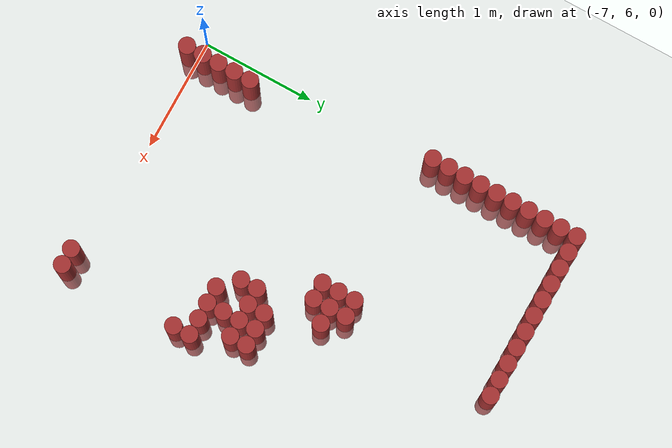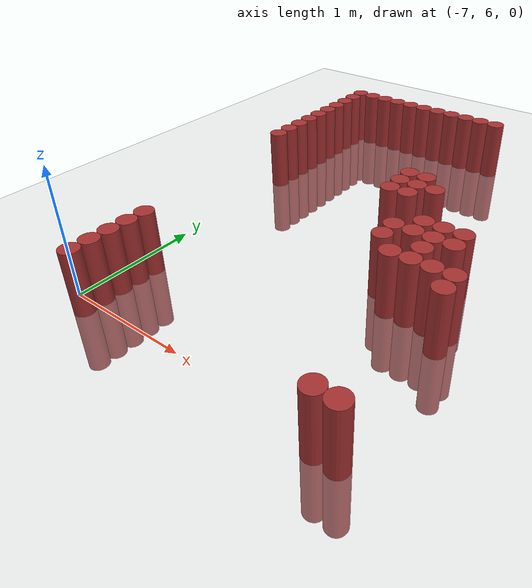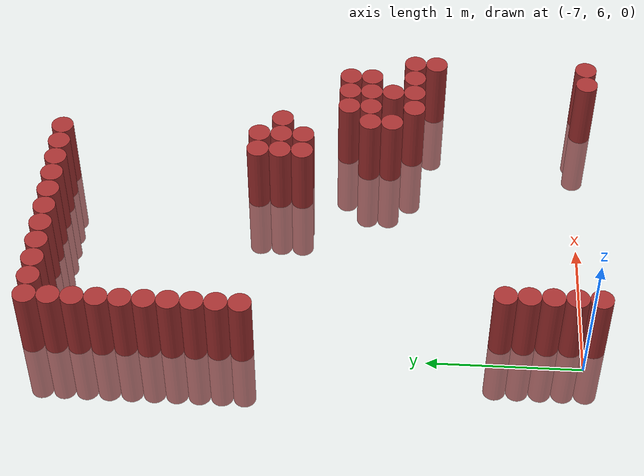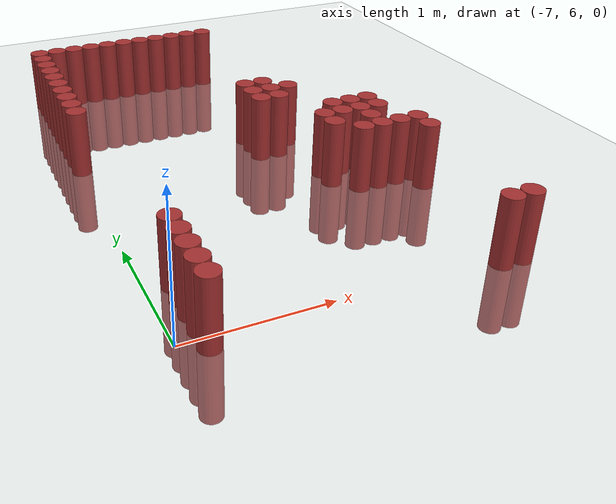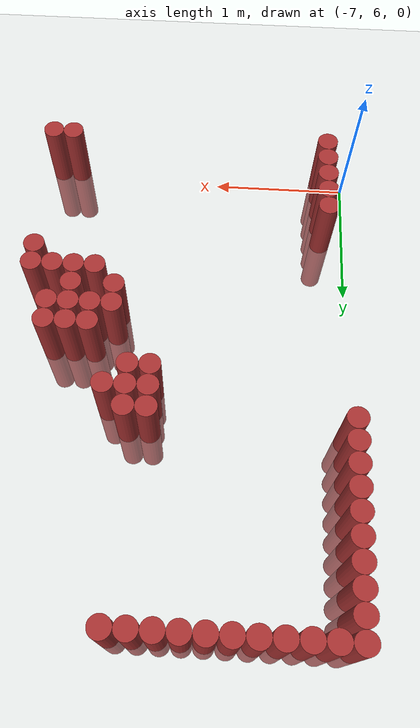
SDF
<sdf version="1.6">
 <world name="default">
  <model name="ground_plane">
   <static>1</static>
   <link name="link">
    <collision name="collision">
     <geometry><plane><normal>0 0 1</normal><size>100 100</size></plane></geometry>
     <surface><friction><ode><mu>100</mu><mu2>50</mu2></ode></friction></surface>
    </collision>
    <visual name="visual">
     <cast_shadows>0</cast_shadows>
     <geometry><plane><normal>0 0 1</normal><size>100 100</size></plane></geometry>
     <material>
      <script><uri>file://media/materials/scripts/gazebo.material</uri><name>Gazebo/Grey</name></script>
     </material>
    </visual>
   </link>
  </model>
  <model name="unit_cylinder_191">
   <static>1</static>
   <pose>-6.975000 8.175000 0.000000 0.000000 0.000000 0.000000</pose>
   <link name="link">
    <inertial>
     <mass>1</mass>
     <inertia><ixx>0.145833</ixx><ixy>0</ixy><ixz>0</ixz><iyy>0.145833</iyy><iyz>0</iyz><izz>0.125</izz></inertia>
    </inertial>
    <collision name="collision">
     <geometry><cylinder><radius>0.075000</radius><length>1</length></cylinder></geometry>
    </collision>
    <visual name="visual">
     <geometry><cylinder><radius>0.075000</radius><length>1</length></cylinder></geometry>
     <material>
      <ambient>0.648000 0.192000 0.192000 1</ambient>
      <diffuse>0.648000 0.192000 0.192000 1</diffuse>
     </material>
     <material>
      <script><name>Gazebo/Grey</name><uri>file://media/materials/scripts/gazebo.material</uri></script>
     </material>
    </visual>
   </link>
  </model>
  <model name="unit_cylinder_192">
   <static>1</static>
   <pose>-6.975000 8.325000 0.000000 0.000000 0.000000 0.000000</pose>
   <link name="link">
    <inertial>
     <mass>1</mass>
     <inertia><ixx>0.145833</ixx><ixy>0</ixy><ixz>0</ixz><iyy>0.145833</iyy><iyz>0</iyz><izz>0.125</izz></inertia>
    </inertial>
    <collision name="collision">
     <geometry><cylinder><radius>0.075000</radius><length>1</length></cylinder></geometry>
    </collision>
    <visual name="visual">
     <geometry><cylinder><radius>0.075000</radius><length>1</length></cylinder></geometry>
     <material>
      <ambient>0.648000 0.192000 0.192000 1</ambient>
      <diffuse>0.648000 0.192000 0.192000 1</diffuse>
     </material>
     <material>
      <script><name>Gazebo/Grey</name><uri>file://media/materials/scripts/gazebo.material</uri></script>
     </material>
    </visual>
   </link>
  </model>
  <model name="unit_cylinder_193">
   <static>1</static>
   <pose>-6.975000 8.475000 0.000000 0.000000 0.000000 0.000000</pose>
   <link name="link">
    <inertial>
     <mass>1</mass>
     <inertia><ixx>0.145833</ixx><ixy>0</ixy><ixz>0</ixz><iyy>0.145833</iyy><iyz>0</iyz><izz>0.125</izz></inertia>
    </inertial>
    <collision name="collision">
     <geometry><cylinder><radius>0.075000</radius><length>1</length></cylinder></geometry>
    </collision>
    <visual name="visual">
     <geometry><cylinder><radius>0.075000</radius><length>1</length></cylinder></geometry>
     <material>
      <ambient>0.648000 0.192000 0.192000 1</ambient>
      <diffuse>0.648000 0.192000 0.192000 1</diffuse>
     </material>
     <material>
      <script><name>Gazebo/Grey</name><uri>file://media/materials/scripts/gazebo.material</uri></script>
     </material>
    </visual>
   </link>
  </model>
  <model name="unit_cylinder_194">
   <static>1</static>
   <pose>-6.975000 8.625000 0.000000 0.000000 0.000000 0.000000</pose>
   <link name="link">
    <inertial>
     <mass>1</mass>
     <inertia><ixx>0.145833</ixx><ixy>0</ixy><ixz>0</ixz><iyy>0.145833</iyy><iyz>0</iyz><izz>0.125</izz></inertia>
    </inertial>
    <collision name="collision">
     <geometry><cylinder><radius>0.075000</radius><length>1</length></cylinder></geometry>
    </collision>
    <visual name="visual">
     <geometry><cylinder><radius>0.075000</radius><length>1</length></cylinder></geometry>
     <material>
      <ambient>0.648000 0.192000 0.192000 1</ambient>
      <diffuse>0.648000 0.192000 0.192000 1</diffuse>
     </material>
     <material>
      <script><name>Gazebo/Grey</name><uri>file://media/materials/scripts/gazebo.material</uri></script>
     </material>
    </visual>
   </link>
  </model>
  <model name="unit_cylinder_195">
   <static>1</static>
   <pose>-6.975000 8.775000 0.000000 0.000000 0.000000 0.000000</pose>
   <link name="link">
    <inertial>
     <mass>1</mass>
     <inertia><ixx>0.145833</ixx><ixy>0</ixy><ixz>0</ixz><iyy>0.145833</iyy><iyz>0</iyz><izz>0.125</izz></inertia>
    </inertial>
    <collision name="collision">
     <geometry><cylinder><radius>0.075000</radius><length>1</length></cylinder></geometry>
    </collision>
    <visual name="visual">
     <geometry><cylinder><radius>0.075000</radius><length>1</length></cylinder></geometry>
     <material>
      <ambient>0.648000 0.192000 0.192000 1</ambient>
      <diffuse>0.648000 0.192000 0.192000 1</diffuse>
     </material>
     <material>
      <script><name>Gazebo/Grey</name><uri>file://media/materials/scripts/gazebo.material</uri></script>
     </material>
    </visual>
   </link>
  </model>
  <model name="unit_cylinder_196">
   <static>1</static>
   <pose>-6.975000 8.925000 0.000000 0.000000 0.000000 0.000000</pose>
   <link name="link">
    <inertial>
     <mass>1</mass>
     <inertia><ixx>0.145833</ixx><ixy>0</ixy><ixz>0</ixz><iyy>0.145833</iyy><iyz>0</iyz><izz>0.125</izz></inertia>
    </inertial>
    <collision name="collision">
     <geometry><cylinder><radius>0.075000</radius><length>1</length></cylinder></geometry>
    </collision>
    <visual name="visual">
     <geometry><cylinder><radius>0.075000</radius><length>1</length></cylinder></geometry>
     <material>
      <ambient>0.648000 0.192000 0.192000 1</ambient>
      <diffuse>0.648000 0.192000 0.192000 1</diffuse>
     </material>
     <material>
      <script><name>Gazebo/Grey</name><uri>file://media/materials/scripts/gazebo.material</uri></script>
     </material>
    </visual>
   </link>
  </model>
  <model name="unit_cylinder_197">
   <static>1</static>
   <pose>-6.975000 9.075000 0.000000 0.000000 0.000000 0.000000</pose>
   <link name="link">
    <inertial>
     <mass>1</mass>
     <inertia><ixx>0.145833</ixx><ixy>0</ixy><ixz>0</ixz><iyy>0.145833</iyy><iyz>0</iyz><izz>0.125</izz></inertia>
    </inertial>
    <collision name="collision">
     <geometry><cylinder><radius>0.075000</radius><length>1</length></cylinder></geometry>
    </collision>
    <visual name="visual">
     <geometry><cylinder><radius>0.075000</radius><length>1</length></cylinder></geometry>
     <material>
      <ambient>0.648000 0.192000 0.192000 1</ambient>
      <diffuse>0.648000 0.192000 0.192000 1</diffuse>
     </material>
     <material>
      <script><name>Gazebo/Grey</name><uri>file://media/materials/scripts/gazebo.material</uri></script>
     </material>
    </visual>
   </link>
  </model>
  <model name="unit_cylinder_198">
   <static>1</static>
   <pose>-6.975000 9.225000 0.000000 0.000000 0.000000 0.000000</pose>
   <link name="link">
    <inertial>
     <mass>1</mass>
     <inertia><ixx>0.145833</ixx><ixy>0</ixy><ixz>0</ixz><iyy>0.145833</iyy><iyz>0</iyz><izz>0.125</izz></inertia>
    </inertial>
    <collision name="collision">
     <geometry><cylinder><radius>0.075000</radius><length>1</length></cylinder></geometry>
    </collision>
    <visual name="visual">
     <geometry><cylinder><radius>0.075000</radius><length>1</length></cylinder></geometry>
     <material>
      <ambient>0.648000 0.192000 0.192000 1</ambient>
      <diffuse>0.648000 0.192000 0.192000 1</diffuse>
     </material>
     <material>
      <script><name>Gazebo/Grey</name><uri>file://media/materials/scripts/gazebo.material</uri></script>
     </material>
    </visual>
   </link>
  </model>
  <model name="unit_cylinder_199">
   <static>1</static>
   <pose>-6.975000 9.375000 0.000000 0.000000 0.000000 0.000000</pose>
   <link name="link">
    <inertial>
     <mass>1</mass>
     <inertia><ixx>0.145833</ixx><ixy>0</ixy><ixz>0</ixz><iyy>0.145833</iyy><iyz>0</iyz><izz>0.125</izz></inertia>
    </inertial>
    <collision name="collision">
     <geometry><cylinder><radius>0.075000</radius><length>1</length></cylinder></geometry>
    </collision>
    <visual name="visual">
     <geometry><cylinder><radius>0.075000</radius><length>1</length></cylinder></geometry>
     <material>
      <ambient>0.648000 0.192000 0.192000 1</ambient>
      <diffuse>0.648000 0.192000 0.192000 1</diffuse>
     </material>
     <material>
      <script><name>Gazebo/Grey</name><uri>file://media/materials/scripts/gazebo.material</uri></script>
     </material>
    </visual>
   </link>
  </model>
  <model name="unit_cylinder_200">
   <static>1</static>
   <pose>-6.975000 9.525000 0.000000 0.000000 0.000000 0.000000</pose>
   <link name="link">
    <inertial>
     <mass>1</mass>
     <inertia><ixx>0.145833</ixx><ixy>0</ixy><ixz>0</ixz><iyy>0.145833</iyy><iyz>0</iyz><izz>0.125</izz></inertia>
    </inertial>
    <collision name="collision">
     <geometry><cylinder><radius>0.075000</radius><length>1</length></cylinder></geometry>
    </collision>
    <visual name="visual">
     <geometry><cylinder><radius>0.075000</radius><length>1</length></cylinder></geometry>
     <material>
      <ambient>0.648000 0.192000 0.192000 1</ambient>
      <diffuse>0.648000 0.192000 0.192000 1</diffuse>
     </material>
     <material>
      <script><name>Gazebo/Grey</name><uri>file://media/materials/scripts/gazebo.material</uri></script>
     </material>
    </visual>
   </link>
  </model>
  <model name="unit_cylinder_206">
   <static>1</static>
   <pose>-6.825000 5.925000 0.000000 0.000000 0.000000 0.000000</pose>
   <link name="link">
    <inertial>
     <mass>1</mass>
     <inertia><ixx>0.145833</ixx><ixy>0</ixy><ixz>0</ixz><iyy>0.145833</iyy><iyz>0</iyz><izz>0.125</izz></inertia>
    </inertial>
    <collision name="collision">
     <geometry><cylinder><radius>0.075000</radius><length>1</length></cylinder></geometry>
    </collision>
    <visual name="visual">
     <geometry><cylinder><radius>0.075000</radius><length>1</length></cylinder></geometry>
     <material>
      <ambient>0.648000 0.192000 0.192000 1</ambient>
      <diffuse>0.648000 0.192000 0.192000 1</diffuse>
     </material>
     <material>
      <script><name>Gazebo/Grey</name><uri>file://media/materials/scripts/gazebo.material</uri></script>
     </material>
    </visual>
   </link>
  </model>
  <model name="unit_cylinder_207">
   <static>1</static>
   <pose>-6.825000 6.075000 0.000000 0.000000 0.000000 0.000000</pose>
   <link name="link">
    <inertial>
     <mass>1</mass>
     <inertia><ixx>0.145833</ixx><ixy>0</ixy><ixz>0</ixz><iyy>0.145833</iyy><iyz>0</iyz><izz>0.125</izz></inertia>
    </inertial>
    <collision name="collision">
     <geometry><cylinder><radius>0.075000</radius><length>1</length></cylinder></geometry>
    </collision>
    <visual name="visual">
     <geometry><cylinder><radius>0.075000</radius><length>1</length></cylinder></geometry>
     <material>
      <ambient>0.648000 0.192000 0.192000 1</ambient>
      <diffuse>0.648000 0.192000 0.192000 1</diffuse>
     </material>
     <material>
      <script><name>Gazebo/Grey</name><uri>file://media/materials/scripts/gazebo.material</uri></script>
     </material>
    </visual>
   </link>
  </model>
  <model name="unit_cylinder_208">
   <static>1</static>
   <pose>-6.825000 6.225000 0.000000 0.000000 0.000000 0.000000</pose>
   <link name="link">
    <inertial>
     <mass>1</mass>
     <inertia><ixx>0.145833</ixx><ixy>0</ixy><ixz>0</ixz><iyy>0.145833</iyy><iyz>0</iyz><izz>0.125</izz></inertia>
    </inertial>
    <collision name="collision">
     <geometry><cylinder><radius>0.075000</radius><length>1</length></cylinder></geometry>
    </collision>
    <visual name="visual">
     <geometry><cylinder><radius>0.075000</radius><length>1</length></cylinder></geometry>
     <material>
      <ambient>0.648000 0.192000 0.192000 1</ambient>
      <diffuse>0.648000 0.192000 0.192000 1</diffuse>
     </material>
     <material>
      <script><name>Gazebo/Grey</name><uri>file://media/materials/scripts/gazebo.material</uri></script>
     </material>
    </visual>
   </link>
  </model>
  <model name="unit_cylinder_209">
   <static>1</static>
   <pose>-6.825000 6.375000 0.000000 0.000000 0.000000 0.000000</pose>
   <link name="link">
    <inertial>
     <mass>1</mass>
     <inertia><ixx>0.145833</ixx><ixy>0</ixy><ixz>0</ixz><iyy>0.145833</iyy><iyz>0</iyz><izz>0.125</izz></inertia>
    </inertial>
    <collision name="collision">
     <geometry><cylinder><radius>0.075000</radius><length>1</length></cylinder></geometry>
    </collision>
    <visual name="visual">
     <geometry><cylinder><radius>0.075000</radius><length>1</length></cylinder></geometry>
     <material>
      <ambient>0.648000 0.192000 0.192000 1</ambient>
      <diffuse>0.648000 0.192000 0.192000 1</diffuse>
     </material>
     <material>
      <script><name>Gazebo/Grey</name><uri>file://media/materials/scripts/gazebo.material</uri></script>
     </material>
    </visual>
   </link>
  </model>
  <model name="unit_cylinder_210">
   <static>1</static>
   <pose>-6.825000 6.525000 0.000000 0.000000 0.000000 0.000000</pose>
   <link name="link">
    <inertial>
     <mass>1</mass>
     <inertia><ixx>0.145833</ixx><ixy>0</ixy><ixz>0</ixz><iyy>0.145833</iyy><iyz>0</iyz><izz>0.125</izz></inertia>
    </inertial>
    <collision name="collision">
     <geometry><cylinder><radius>0.075000</radius><length>1</length></cylinder></geometry>
    </collision>
    <visual name="visual">
     <geometry><cylinder><radius>0.075000</radius><length>1</length></cylinder></geometry>
     <material>
      <ambient>0.648000 0.192000 0.192000 1</ambient>
      <diffuse>0.648000 0.192000 0.192000 1</diffuse>
     </material>
     <material>
      <script><name>Gazebo/Grey</name><uri>file://media/materials/scripts/gazebo.material</uri></script>
     </material>
    </visual>
   </link>
  </model>
  <model name="unit_cylinder_211">
   <static>1</static>
   <pose>-6.825000 9.525000 0.000000 0.000000 0.000000 0.000000</pose>
   <link name="link">
    <inertial>
     <mass>1</mass>
     <inertia><ixx>0.145833</ixx><ixy>0</ixy><ixz>0</ixz><iyy>0.145833</iyy><iyz>0</iyz><izz>0.125</izz></inertia>
    </inertial>
    <collision name="collision">
     <geometry><cylinder><radius>0.075000</radius><length>1</length></cylinder></geometry>
    </collision>
    <visual name="visual">
     <geometry><cylinder><radius>0.075000</radius><length>1</length></cylinder></geometry>
     <material>
      <ambient>0.648000 0.192000 0.192000 1</ambient>
      <diffuse>0.648000 0.192000 0.192000 1</diffuse>
     </material>
     <material>
      <script><name>Gazebo/Grey</name><uri>file://media/materials/scripts/gazebo.material</uri></script>
     </material>
    </visual>
   </link>
  </model>
  <model name="unit_cylinder_212">
   <static>1</static>
   <pose>-6.675000 9.525000 0.000000 0.000000 0.000000 0.000000</pose>
   <link name="link">
    <inertial>
     <mass>1</mass>
     <inertia><ixx>0.145833</ixx><ixy>0</ixy><ixz>0</ixz><iyy>0.145833</iyy><iyz>0</iyz><izz>0.125</izz></inertia>
    </inertial>
    <collision name="collision">
     <geometry><cylinder><radius>0.075000</radius><length>1</length></cylinder></geometry>
    </collision>
    <visual name="visual">
     <geometry><cylinder><radius>0.075000</radius><length>1</length></cylinder></geometry>
     <material>
      <ambient>0.648000 0.192000 0.192000 1</ambient>
      <diffuse>0.648000 0.192000 0.192000 1</diffuse>
     </material>
     <material>
      <script><name>Gazebo/Grey</name><uri>file://media/materials/scripts/gazebo.material</uri></script>
     </material>
    </visual>
   </link>
  </model>
  <model name="unit_cylinder_213">
   <static>1</static>
   <pose>-6.525000 9.525000 0.000000 0.000000 0.000000 0.000000</pose>
   <link name="link">
    <inertial>
     <mass>1</mass>
     <inertia><ixx>0.145833</ixx><ixy>0</ixy><ixz>0</ixz><iyy>0.145833</iyy><iyz>0</iyz><izz>0.125</izz></inertia>
    </inertial>
    <collision name="collision">
     <geometry><cylinder><radius>0.075000</radius><length>1</length></cylinder></geometry>
    </collision>
    <visual name="visual">
     <geometry><cylinder><radius>0.075000</radius><length>1</length></cylinder></geometry>
     <material>
      <ambient>0.648000 0.192000 0.192000 1</ambient>
      <diffuse>0.648000 0.192000 0.192000 1</diffuse>
     </material>
     <material>
      <script><name>Gazebo/Grey</name><uri>file://media/materials/scripts/gazebo.material</uri></script>
     </material>
    </visual>
   </link>
  </model>
  <model name="unit_cylinder_214">
   <static>1</static>
   <pose>-6.375000 9.525000 0.000000 0.000000 0.000000 0.000000</pose>
   <link name="link">
    <inertial>
     <mass>1</mass>
     <inertia><ixx>0.145833</ixx><ixy>0</ixy><ixz>0</ixz><iyy>0.145833</iyy><iyz>0</iyz><izz>0.125</izz></inertia>
    </inertial>
    <collision name="collision">
     <geometry><cylinder><radius>0.075000</radius><length>1</length></cylinder></geometry>
    </collision>
    <visual name="visual">
     <geometry><cylinder><radius>0.075000</radius><length>1</length></cylinder></geometry>
     <material>
      <ambient>0.648000 0.192000 0.192000 1</ambient>
      <diffuse>0.648000 0.192000 0.192000 1</diffuse>
     </material>
     <material>
      <script><name>Gazebo/Grey</name><uri>file://media/materials/scripts/gazebo.material</uri></script>
     </material>
    </visual>
   </link>
  </model>
  <model name="unit_cylinder_215">
   <static>1</static>
   <pose>-6.225000 9.525000 0.000000 0.000000 0.000000 0.000000</pose>
   <link name="link">
    <inertial>
     <mass>1</mass>
     <inertia><ixx>0.145833</ixx><ixy>0</ixy><ixz>0</ixz><iyy>0.145833</iyy><iyz>0</iyz><izz>0.125</izz></inertia>
    </inertial>
    <collision name="collision">
     <geometry><cylinder><radius>0.075000</radius><length>1</length></cylinder></geometry>
    </collision>
    <visual name="visual">
     <geometry><cylinder><radius>0.075000</radius><length>1</length></cylinder></geometry>
     <material>
      <ambient>0.648000 0.192000 0.192000 1</ambient>
      <diffuse>0.648000 0.192000 0.192000 1</diffuse>
     </material>
     <material>
      <script><name>Gazebo/Grey</name><uri>file://media/materials/scripts/gazebo.material</uri></script>
     </material>
    </visual>
   </link>
  </model>
  <model name="unit_cylinder_216">
   <static>1</static>
   <pose>-6.075000 9.525000 0.000000 0.000000 0.000000 0.000000</pose>
   <link name="link">
    <inertial>
     <mass>1</mass>
     <inertia><ixx>0.145833</ixx><ixy>0</ixy><ixz>0</ixz><iyy>0.145833</iyy><iyz>0</iyz><izz>0.125</izz></inertia>
    </inertial>
    <collision name="collision">
     <geometry><cylinder><radius>0.075000</radius><length>1</length></cylinder></geometry>
    </collision>
    <visual name="visual">
     <geometry><cylinder><radius>0.075000</radius><length>1</length></cylinder></geometry>
     <material>
      <ambient>0.648000 0.192000 0.192000 1</ambient>
      <diffuse>0.648000 0.192000 0.192000 1</diffuse>
     </material>
     <material>
      <script><name>Gazebo/Grey</name><uri>file://media/materials/scripts/gazebo.material</uri></script>
     </material>
    </visual>
   </link>
  </model>
  <model name="unit_cylinder_217">
   <static>1</static>
   <pose>-5.925000 9.525000 0.000000 0.000000 0.000000 0.000000</pose>
   <link name="link">
    <inertial>
     <mass>1</mass>
     <inertia><ixx>0.145833</ixx><ixy>0</ixy><ixz>0</ixz><iyy>0.145833</iyy><iyz>0</iyz><izz>0.125</izz></inertia>
    </inertial>
    <collision name="collision">
     <geometry><cylinder><radius>0.075000</radius><length>1</length></cylinder></geometry>
    </collision>
    <visual name="visual">
     <geometry><cylinder><radius>0.075000</radius><length>1</length></cylinder></geometry>
     <material>
      <ambient>0.648000 0.192000 0.192000 1</ambient>
      <diffuse>0.648000 0.192000 0.192000 1</diffuse>
     </material>
     <material>
      <script><name>Gazebo/Grey</name><uri>file://media/materials/scripts/gazebo.material</uri></script>
     </material>
    </visual>
   </link>
  </model>
  <model name="unit_cylinder_218">
   <static>1</static>
   <pose>-5.775000 9.525000 0.000000 0.000000 0.000000 0.000000</pose>
   <link name="link">
    <inertial>
     <mass>1</mass>
     <inertia><ixx>0.145833</ixx><ixy>0</ixy><ixz>0</ixz><iyy>0.145833</iyy><iyz>0</iyz><izz>0.125</izz></inertia>
    </inertial>
    <collision name="collision">
     <geometry><cylinder><radius>0.075000</radius><length>1</length></cylinder></geometry>
    </collision>
    <visual name="visual">
     <geometry><cylinder><radius>0.075000</radius><length>1</length></cylinder></geometry>
     <material>
      <ambient>0.648000 0.192000 0.192000 1</ambient>
      <diffuse>0.648000 0.192000 0.192000 1</diffuse>
     </material>
     <material>
      <script><name>Gazebo/Grey</name><uri>file://media/materials/scripts/gazebo.material</uri></script>
     </material>
    </visual>
   </link>
  </model>
  <model name="unit_cylinder_219">
   <static>1</static>
   <pose>-5.625000 7.875000 0.000000 0.000000 0.000000 0.000000</pose>
   <link name="link">
    <inertial>
     <mass>1</mass>
     <inertia><ixx>0.145833</ixx><ixy>0</ixy><ixz>0</ixz><iyy>0.145833</iyy><iyz>0</iyz><izz>0.125</izz></inertia>
    </inertial>
    <collision name="collision">
     <geometry><cylinder><radius>0.075000</radius><length>1</length></cylinder></geometry>
    </collision>
    <visual name="visual">
     <geometry><cylinder><radius>0.075000</radius><length>1</length></cylinder></geometry>
     <material>
      <ambient>0.648000 0.192000 0.192000 1</ambient>
      <diffuse>0.648000 0.192000 0.192000 1</diffuse>
     </material>
     <material>
      <script><name>Gazebo/Grey</name><uri>file://media/materials/scripts/gazebo.material</uri></script>
     </material>
    </visual>
   </link>
  </model>
  <model name="unit_cylinder_220">
   <static>1</static>
   <pose>-5.625000 8.025000 0.000000 0.000000 0.000000 0.000000</pose>
   <link name="link">
    <inertial>
     <mass>1</mass>
     <inertia><ixx>0.145833</ixx><ixy>0</ixy><ixz>0</ixz><iyy>0.145833</iyy><iyz>0</iyz><izz>0.125</izz></inertia>
    </inertial>
    <collision name="collision">
     <geometry><cylinder><radius>0.075000</radius><length>1</length></cylinder></geometry>
    </collision>
    <visual name="visual">
     <geometry><cylinder><radius>0.075000</radius><length>1</length></cylinder></geometry>
     <material>
      <ambient>0.648000 0.192000 0.192000 1</ambient>
      <diffuse>0.648000 0.192000 0.192000 1</diffuse>
     </material>
     <material>
      <script><name>Gazebo/Grey</name><uri>file://media/materials/scripts/gazebo.material</uri></script>
     </material>
    </visual>
   </link>
  </model>
  <model name="unit_cylinder_221">
   <static>1</static>
   <pose>-5.625000 8.175000 0.000000 0.000000 0.000000 0.000000</pose>
   <link name="link">
    <inertial>
     <mass>1</mass>
     <inertia><ixx>0.145833</ixx><ixy>0</ixy><ixz>0</ixz><iyy>0.145833</iyy><iyz>0</iyz><izz>0.125</izz></inertia>
    </inertial>
    <collision name="collision">
     <geometry><cylinder><radius>0.075000</radius><length>1</length></cylinder></geometry>
    </collision>
    <visual name="visual">
     <geometry><cylinder><radius>0.075000</radius><length>1</length></cylinder></geometry>
     <material>
      <ambient>0.648000 0.192000 0.192000 1</ambient>
      <diffuse>0.648000 0.192000 0.192000 1</diffuse>
     </material>
     <material>
      <script><name>Gazebo/Grey</name><uri>file://media/materials/scripts/gazebo.material</uri></script>
     </material>
    </visual>
   </link>
  </model>
  <model name="unit_cylinder_222">
   <static>1</static>
   <pose>-5.625000 9.525000 0.000000 0.000000 0.000000 0.000000</pose>
   <link name="link">
    <inertial>
     <mass>1</mass>
     <inertia><ixx>0.145833</ixx><ixy>0</ixy><ixz>0</ixz><iyy>0.145833</iyy><iyz>0</iyz><izz>0.125</izz></inertia>
    </inertial>
    <collision name="collision">
     <geometry><cylinder><radius>0.075000</radius><length>1</length></cylinder></geometry>
    </collision>
    <visual name="visual">
     <geometry><cylinder><radius>0.075000</radius><length>1</length></cylinder></geometry>
     <material>
      <ambient>0.648000 0.192000 0.192000 1</ambient>
      <diffuse>0.648000 0.192000 0.192000 1</diffuse>
     </material>
     <material>
      <script><name>Gazebo/Grey</name><uri>file://media/materials/scripts/gazebo.material</uri></script>
     </material>
    </visual>
   </link>
  </model>
  <model name="unit_cylinder_225">
   <static>1</static>
   <pose>-5.475000 7.875000 0.000000 0.000000 0.000000 0.000000</pose>
   <link name="link">
    <inertial>
     <mass>1</mass>
     <inertia><ixx>0.145833</ixx><ixy>0</ixy><ixz>0</ixz><iyy>0.145833</iyy><iyz>0</iyz><izz>0.125</izz></inertia>
    </inertial>
    <collision name="collision">
     <geometry><cylinder><radius>0.075000</radius><length>1</length></cylinder></geometry>
    </collision>
    <visual name="visual">
     <geometry><cylinder><radius>0.075000</radius><length>1</length></cylinder></geometry>
     <material>
      <ambient>0.648000 0.192000 0.192000 1</ambient>
      <diffuse>0.648000 0.192000 0.192000 1</diffuse>
     </material>
     <material>
      <script><name>Gazebo/Grey</name><uri>file://media/materials/scripts/gazebo.material</uri></script>
     </material>
    </visual>
   </link>
  </model>
  <model name="unit_cylinder_226">
   <static>1</static>
   <pose>-5.475000 8.025000 0.000000 0.000000 0.000000 0.000000</pose>
   <link name="link">
    <inertial>
     <mass>1</mass>
     <inertia><ixx>0.145833</ixx><ixy>0</ixy><ixz>0</ixz><iyy>0.145833</iyy><iyz>0</iyz><izz>0.125</izz></inertia>
    </inertial>
    <collision name="collision">
     <geometry><cylinder><radius>0.075000</radius><length>1</length></cylinder></geometry>
    </collision>
    <visual name="visual">
     <geometry><cylinder><radius>0.075000</radius><length>1</length></cylinder></geometry>
     <material>
      <ambient>0.648000 0.192000 0.192000 1</ambient>
      <diffuse>0.648000 0.192000 0.192000 1</diffuse>
     </material>
     <material>
      <script><name>Gazebo/Grey</name><uri>file://media/materials/scripts/gazebo.material</uri></script>
     </material>
    </visual>
   </link>
  </model>
  <model name="unit_cylinder_227">
   <static>1</static>
   <pose>-5.475000 8.175000 0.000000 0.000000 0.000000 0.000000</pose>
   <link name="link">
    <inertial>
     <mass>1</mass>
     <inertia><ixx>0.145833</ixx><ixy>0</ixy><ixz>0</ixz><iyy>0.145833</iyy><iyz>0</iyz><izz>0.125</izz></inertia>
    </inertial>
    <collision name="collision">
     <geometry><cylinder><radius>0.075000</radius><length>1</length></cylinder></geometry>
    </collision>
    <visual name="visual">
     <geometry><cylinder><radius>0.075000</radius><length>1</length></cylinder></geometry>
     <material>
      <ambient>0.648000 0.192000 0.192000 1</ambient>
      <diffuse>0.648000 0.192000 0.192000 1</diffuse>
     </material>
     <material>
      <script><name>Gazebo/Grey</name><uri>file://media/materials/scripts/gazebo.material</uri></script>
     </material>
    </visual>
   </link>
  </model>
  <model name="unit_cylinder_228">
   <static>1</static>
   <pose>-5.475000 9.525000 0.000000 0.000000 0.000000 0.000000</pose>
   <link name="link">
    <inertial>
     <mass>1</mass>
     <inertia><ixx>0.145833</ixx><ixy>0</ixy><ixz>0</ixz><iyy>0.145833</iyy><iyz>0</iyz><izz>0.125</izz></inertia>
    </inertial>
    <collision name="collision">
     <geometry><cylinder><radius>0.075000</radius><length>1</length></cylinder></geometry>
    </collision>
    <visual name="visual">
     <geometry><cylinder><radius>0.075000</radius><length>1</length></cylinder></geometry>
     <material>
      <ambient>0.648000 0.192000 0.192000 1</ambient>
      <diffuse>0.648000 0.192000 0.192000 1</diffuse>
     </material>
     <material>
      <script><name>Gazebo/Grey</name><uri>file://media/materials/scripts/gazebo.material</uri></script>
     </material>
    </visual>
   </link>
  </model>
  <model name="unit_cylinder_232">
   <static>1</static>
   <pose>-5.325000 7.275000 0.000000 0.000000 0.000000 0.000000</pose>
   <link name="link">
    <inertial>
     <mass>1</mass>
     <inertia><ixx>0.145833</ixx><ixy>0</ixy><ixz>0</ixz><iyy>0.145833</iyy><iyz>0</iyz><izz>0.125</izz></inertia>
    </inertial>
    <collision name="collision">
     <geometry><cylinder><radius>0.075000</radius><length>1</length></cylinder></geometry>
    </collision>
    <visual name="visual">
     <geometry><cylinder><radius>0.075000</radius><length>1</length></cylinder></geometry>
     <material>
      <ambient>0.648000 0.192000 0.192000 1</ambient>
      <diffuse>0.648000 0.192000 0.192000 1</diffuse>
     </material>
     <material>
      <script><name>Gazebo/Grey</name><uri>file://media/materials/scripts/gazebo.material</uri></script>
     </material>
    </visual>
   </link>
  </model>
  <model name="unit_cylinder_233">
   <static>1</static>
   <pose>-5.325000 7.425000 0.000000 0.000000 0.000000 0.000000</pose>
   <link name="link">
    <inertial>
     <mass>1</mass>
     <inertia><ixx>0.145833</ixx><ixy>0</ixy><ixz>0</ixz><iyy>0.145833</iyy><iyz>0</iyz><izz>0.125</izz></inertia>
    </inertial>
    <collision name="collision">
     <geometry><cylinder><radius>0.075000</radius><length>1</length></cylinder></geometry>
    </collision>
    <visual name="visual">
     <geometry><cylinder><radius>0.075000</radius><length>1</length></cylinder></geometry>
     <material>
      <ambient>0.648000 0.192000 0.192000 1</ambient>
      <diffuse>0.648000 0.192000 0.192000 1</diffuse>
     </material>
     <material>
      <script><name>Gazebo/Grey</name><uri>file://media/materials/scripts/gazebo.material</uri></script>
     </material>
    </visual>
   </link>
  </model>
  <model name="unit_cylinder_234">
   <static>1</static>
   <pose>-5.325000 8.025000 0.000000 0.000000 0.000000 0.000000</pose>
   <link name="link">
    <inertial>
     <mass>1</mass>
     <inertia><ixx>0.145833</ixx><ixy>0</ixy><ixz>0</ixz><iyy>0.145833</iyy><iyz>0</iyz><izz>0.125</izz></inertia>
    </inertial>
    <collision name="collision">
     <geometry><cylinder><radius>0.075000</radius><length>1</length></cylinder></geometry>
    </collision>
    <visual name="visual">
     <geometry><cylinder><radius>0.075000</radius><length>1</length></cylinder></geometry>
     <material>
      <ambient>0.648000 0.192000 0.192000 1</ambient>
      <diffuse>0.648000 0.192000 0.192000 1</diffuse>
     </material>
     <material>
      <script><name>Gazebo/Grey</name><uri>file://media/materials/scripts/gazebo.material</uri></script>
     </material>
    </visual>
   </link>
  </model>
  <model name="unit_cylinder_236">
   <static>1</static>
   <pose>-5.175000 7.125000 0.000000 0.000000 0.000000 0.000000</pose>
   <link name="link">
    <inertial>
     <mass>1</mass>
     <inertia><ixx>0.145833</ixx><ixy>0</ixy><ixz>0</ixz><iyy>0.145833</iyy><iyz>0</iyz><izz>0.125</izz></inertia>
    </inertial>
    <collision name="collision">
     <geometry><cylinder><radius>0.075000</radius><length>1</length></cylinder></geometry>
    </collision>
    <visual name="visual">
     <geometry><cylinder><radius>0.075000</radius><length>1</length></cylinder></geometry>
     <material>
      <ambient>0.648000 0.192000 0.192000 1</ambient>
      <diffuse>0.648000 0.192000 0.192000 1</diffuse>
     </material>
     <material>
      <script><name>Gazebo/Grey</name><uri>file://media/materials/scripts/gazebo.material</uri></script>
     </material>
    </visual>
   </link>
  </model>
  <model name="unit_cylinder_237">
   <static>1</static>
   <pose>-5.175000 7.425000 0.000000 0.000000 0.000000 0.000000</pose>
   <link name="link">
    <inertial>
     <mass>1</mass>
     <inertia><ixx>0.145833</ixx><ixy>0</ixy><ixz>0</ixz><iyy>0.145833</iyy><iyz>0</iyz><izz>0.125</izz></inertia>
    </inertial>
    <collision name="collision">
     <geometry><cylinder><radius>0.075000</radius><length>1</length></cylinder></geometry>
    </collision>
    <visual name="visual">
     <geometry><cylinder><radius>0.075000</radius><length>1</length></cylinder></geometry>
     <material>
      <ambient>0.648000 0.192000 0.192000 1</ambient>
      <diffuse>0.648000 0.192000 0.192000 1</diffuse>
     </material>
     <material>
      <script><name>Gazebo/Grey</name><uri>file://media/materials/scripts/gazebo.material</uri></script>
     </material>
    </visual>
   </link>
  </model>
  <model name="unit_cylinder_238">
   <static>1</static>
   <pose>-5.175000 7.575000 0.000000 0.000000 0.000000 0.000000</pose>
   <link name="link">
    <inertial>
     <mass>1</mass>
     <inertia><ixx>0.145833</ixx><ixy>0</ixy><ixz>0</ixz><iyy>0.145833</iyy><iyz>0</iyz><izz>0.125</izz></inertia>
    </inertial>
    <collision name="collision">
     <geometry><cylinder><radius>0.075000</radius><length>1</length></cylinder></geometry>
    </collision>
    <visual name="visual">
     <geometry><cylinder><radius>0.075000</radius><length>1</length></cylinder></geometry>
     <material>
      <ambient>0.648000 0.192000 0.192000 1</ambient>
      <diffuse>0.648000 0.192000 0.192000 1</diffuse>
     </material>
     <material>
      <script><name>Gazebo/Grey</name><uri>file://media/materials/scripts/gazebo.material</uri></script>
     </material>
    </visual>
   </link>
  </model>
  <model name="unit_cylinder_243">
   <static>1</static>
   <pose>-5.025000 7.125000 0.000000 0.000000 0.000000 0.000000</pose>
   <link name="link">
    <inertial>
     <mass>1</mass>
     <inertia><ixx>0.145833</ixx><ixy>0</ixy><ixz>0</ixz><iyy>0.145833</iyy><iyz>0</iyz><izz>0.125</izz></inertia>
    </inertial>
    <collision name="collision">
     <geometry><cylinder><radius>0.075000</radius><length>1</length></cylinder></geometry>
    </collision>
    <visual name="visual">
     <geometry><cylinder><radius>0.075000</radius><length>1</length></cylinder></geometry>
     <material>
      <ambient>0.648000 0.192000 0.192000 1</ambient>
      <diffuse>0.648000 0.192000 0.192000 1</diffuse>
     </material>
     <material>
      <script><name>Gazebo/Grey</name><uri>file://media/materials/scripts/gazebo.material</uri></script>
     </material>
    </visual>
   </link>
  </model>
  <model name="unit_cylinder_244">
   <static>1</static>
   <pose>-5.025000 7.275000 0.000000 0.000000 0.000000 0.000000</pose>
   <link name="link">
    <inertial>
     <mass>1</mass>
     <inertia><ixx>0.145833</ixx><ixy>0</ixy><ixz>0</ixz><iyy>0.145833</iyy><iyz>0</iyz><izz>0.125</izz></inertia>
    </inertial>
    <collision name="collision">
     <geometry><cylinder><radius>0.075000</radius><length>1</length></cylinder></geometry>
    </collision>
    <visual name="visual">
     <geometry><cylinder><radius>0.075000</radius><length>1</length></cylinder></geometry>
     <material>
      <ambient>0.648000 0.192000 0.192000 1</ambient>
      <diffuse>0.648000 0.192000 0.192000 1</diffuse>
     </material>
     <material>
      <script><name>Gazebo/Grey</name><uri>file://media/materials/scripts/gazebo.material</uri></script>
     </material>
    </visual>
   </link>
  </model>
  <model name="unit_cylinder_245">
   <static>1</static>
   <pose>-5.025000 7.425000 0.000000 0.000000 0.000000 0.000000</pose>
   <link name="link">
    <inertial>
     <mass>1</mass>
     <inertia><ixx>0.145833</ixx><ixy>0</ixy><ixz>0</ixz><iyy>0.145833</iyy><iyz>0</iyz><izz>0.125</izz></inertia>
    </inertial>
    <collision name="collision">
     <geometry><cylinder><radius>0.075000</radius><length>1</length></cylinder></geometry>
    </collision>
    <visual name="visual">
     <geometry><cylinder><radius>0.075000</radius><length>1</length></cylinder></geometry>
     <material>
      <ambient>0.648000 0.192000 0.192000 1</ambient>
      <diffuse>0.648000 0.192000 0.192000 1</diffuse>
     </material>
     <material>
      <script><name>Gazebo/Grey</name><uri>file://media/materials/scripts/gazebo.material</uri></script>
     </material>
    </visual>
   </link>
  </model>
  <model name="unit_cylinder_246">
   <static>1</static>
   <pose>-5.025000 7.575000 0.000000 0.000000 0.000000 0.000000</pose>
   <link name="link">
    <inertial>
     <mass>1</mass>
     <inertia><ixx>0.145833</ixx><ixy>0</ixy><ixz>0</ixz><iyy>0.145833</iyy><iyz>0</iyz><izz>0.125</izz></inertia>
    </inertial>
    <collision name="collision">
     <geometry><cylinder><radius>0.075000</radius><length>1</length></cylinder></geometry>
    </collision>
    <visual name="visual">
     <geometry><cylinder><radius>0.075000</radius><length>1</length></cylinder></geometry>
     <material>
      <ambient>0.648000 0.192000 0.192000 1</ambient>
      <diffuse>0.648000 0.192000 0.192000 1</diffuse>
     </material>
     <material>
      <script><name>Gazebo/Grey</name><uri>file://media/materials/scripts/gazebo.material</uri></script>
     </material>
    </visual>
   </link>
  </model>
  <model name="unit_cylinder_251">
   <static>1</static>
   <pose>-4.875000 5.925000 0.000000 0.000000 0.000000 0.000000</pose>
   <link name="link">
    <inertial>
     <mass>1</mass>
     <inertia><ixx>0.145833</ixx><ixy>0</ixy><ixz>0</ixz><iyy>0.145833</iyy><iyz>0</iyz><izz>0.125</izz></inertia>
    </inertial>
    <collision name="collision">
     <geometry><cylinder><radius>0.075000</radius><length>1</length></cylinder></geometry>
    </collision>
    <visual name="visual">
     <geometry><cylinder><radius>0.075000</radius><length>1</length></cylinder></geometry>
     <material>
      <ambient>0.648000 0.192000 0.192000 1</ambient>
      <diffuse>0.648000 0.192000 0.192000 1</diffuse>
     </material>
     <material>
      <script><name>Gazebo/Grey</name><uri>file://media/materials/scripts/gazebo.material</uri></script>
     </material>
    </visual>
   </link>
  </model>
  <model name="unit_cylinder_252">
   <static>1</static>
   <pose>-4.875000 7.125000 0.000000 0.000000 0.000000 0.000000</pose>
   <link name="link">
    <inertial>
     <mass>1</mass>
     <inertia><ixx>0.145833</ixx><ixy>0</ixy><ixz>0</ixz><iyy>0.145833</iyy><iyz>0</iyz><izz>0.125</izz></inertia>
    </inertial>
    <collision name="collision">
     <geometry><cylinder><radius>0.075000</radius><length>1</length></cylinder></geometry>
    </collision>
    <visual name="visual">
     <geometry><cylinder><radius>0.075000</radius><length>1</length></cylinder></geometry>
     <material>
      <ambient>0.648000 0.192000 0.192000 1</ambient>
      <diffuse>0.648000 0.192000 0.192000 1</diffuse>
     </material>
     <material>
      <script><name>Gazebo/Grey</name><uri>file://media/materials/scripts/gazebo.material</uri></script>
     </material>
    </visual>
   </link>
  </model>
  <model name="unit_cylinder_253">
   <static>1</static>
   <pose>-4.875000 7.425000 0.000000 0.000000 0.000000 0.000000</pose>
   <link name="link">
    <inertial>
     <mass>1</mass>
     <inertia><ixx>0.145833</ixx><ixy>0</ixy><ixz>0</ixz><iyy>0.145833</iyy><iyz>0</iyz><izz>0.125</izz></inertia>
    </inertial>
    <collision name="collision">
     <geometry><cylinder><radius>0.075000</radius><length>1</length></cylinder></geometry>
    </collision>
    <visual name="visual">
     <geometry><cylinder><radius>0.075000</radius><length>1</length></cylinder></geometry>
     <material>
      <ambient>0.648000 0.192000 0.192000 1</ambient>
      <diffuse>0.648000 0.192000 0.192000 1</diffuse>
     </material>
     <material>
      <script><name>Gazebo/Grey</name><uri>file://media/materials/scripts/gazebo.material</uri></script>
     </material>
    </visual>
   </link>
  </model>
  <model name="unit_cylinder_254">
   <static>1</static>
   <pose>-4.875000 7.575000 0.000000 0.000000 0.000000 0.000000</pose>
   <link name="link">
    <inertial>
     <mass>1</mass>
     <inertia><ixx>0.145833</ixx><ixy>0</ixy><ixz>0</ixz><iyy>0.145833</iyy><iyz>0</iyz><izz>0.125</izz></inertia>
    </inertial>
    <collision name="collision">
     <geometry><cylinder><radius>0.075000</radius><length>1</length></cylinder></geometry>
    </collision>
    <visual name="visual">
     <geometry><cylinder><radius>0.075000</radius><length>1</length></cylinder></geometry>
     <material>
      <ambient>0.648000 0.192000 0.192000 1</ambient>
      <diffuse>0.648000 0.192000 0.192000 1</diffuse>
     </material>
     <material>
      <script><name>Gazebo/Grey</name><uri>file://media/materials/scripts/gazebo.material</uri></script>
     </material>
    </visual>
   </link>
  </model>
  <model name="unit_cylinder_256">
   <static>1</static>
   <pose>-4.725000 5.925000 0.000000 0.000000 0.000000 0.000000</pose>
   <link name="link">
    <inertial>
     <mass>1</mass>
     <inertia><ixx>0.145833</ixx><ixy>0</ixy><ixz>0</ixz><iyy>0.145833</iyy><iyz>0</iyz><izz>0.125</izz></inertia>
    </inertial>
    <collision name="collision">
     <geometry><cylinder><radius>0.075000</radius><length>1</length></cylinder></geometry>
    </collision>
    <visual name="visual">
     <geometry><cylinder><radius>0.075000</radius><length>1</length></cylinder></geometry>
     <material>
      <ambient>0.648000 0.192000 0.192000 1</ambient>
      <diffuse>0.648000 0.192000 0.192000 1</diffuse>
     </material>
     <material>
      <script><name>Gazebo/Grey</name><uri>file://media/materials/scripts/gazebo.material</uri></script>
     </material>
    </visual>
   </link>
  </model>
  <model name="unit_cylinder_257">
   <static>1</static>
   <pose>-4.725000 6.975000 0.000000 0.000000 0.000000 0.000000</pose>
   <link name="link">
    <inertial>
     <mass>1</mass>
     <inertia><ixx>0.145833</ixx><ixy>0</ixy><ixz>0</ixz><iyy>0.145833</iyy><iyz>0</iyz><izz>0.125</izz></inertia>
    </inertial>
    <collision name="collision">
     <geometry><cylinder><radius>0.075000</radius><length>1</length></cylinder></geometry>
    </collision>
    <visual name="visual">
     <geometry><cylinder><radius>0.075000</radius><length>1</length></cylinder></geometry>
     <material>
      <ambient>0.648000 0.192000 0.192000 1</ambient>
      <diffuse>0.648000 0.192000 0.192000 1</diffuse>
     </material>
     <material>
      <script><name>Gazebo/Grey</name><uri>file://media/materials/scripts/gazebo.material</uri></script>
     </material>
    </visual>
   </link>
  </model>
  <model name="unit_cylinder_258">
   <static>1</static>
   <pose>-4.725000 7.125000 0.000000 0.000000 0.000000 0.000000</pose>
   <link name="link">
    <inertial>
     <mass>1</mass>
     <inertia><ixx>0.145833</ixx><ixy>0</ixy><ixz>0</ixz><iyy>0.145833</iyy><iyz>0</iyz><izz>0.125</izz></inertia>
    </inertial>
    <collision name="collision">
     <geometry><cylinder><radius>0.075000</radius><length>1</length></cylinder></geometry>
    </collision>
    <visual name="visual">
     <geometry><cylinder><radius>0.075000</radius><length>1</length></cylinder></geometry>
     <material>
      <ambient>0.648000 0.192000 0.192000 1</ambient>
      <diffuse>0.648000 0.192000 0.192000 1</diffuse>
     </material>
     <material>
      <script><name>Gazebo/Grey</name><uri>file://media/materials/scripts/gazebo.material</uri></script>
     </material>
    </visual>
   </link>
  </model>
 </world>
</sdf>
